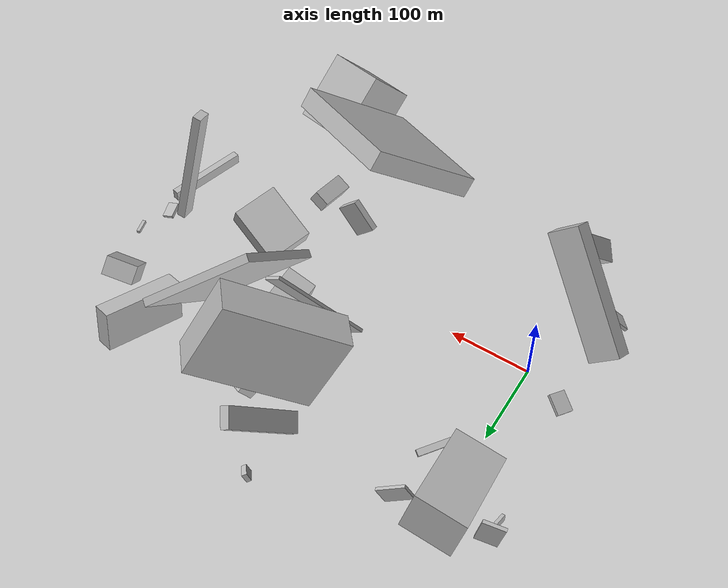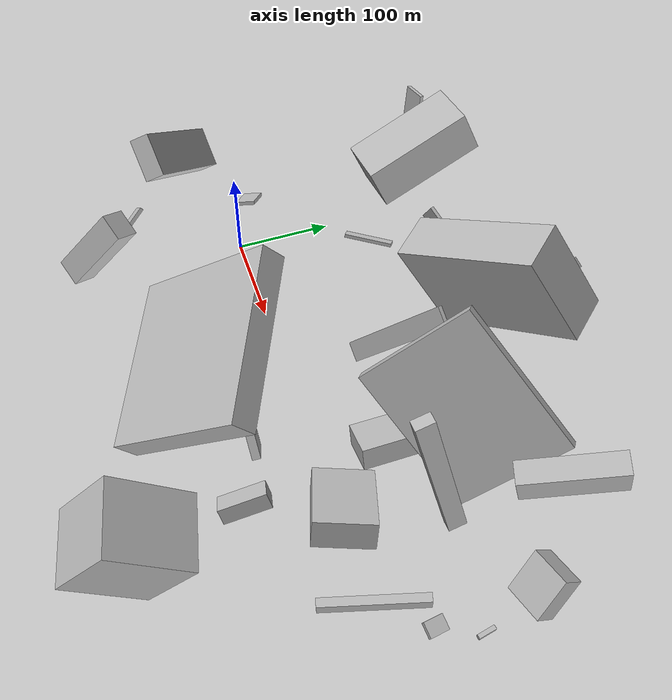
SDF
<sdf version="1.6">
 <world name="default">
  <scene>
   <sky><clouds><speed>12</speed></clouds></sky>
   <ambient>0.4 0.4 0.4 1</ambient>
   <background>0.7 0.7 0.7 1</background>
   <shadows>1</shadows>
  </scene>
  <gravity>0 0 -9.8066</gravity>
  <magnetic_field>6e-06 2.3e-05 -4.2e-05</magnetic_field>
  <physics default="0" name="default_physics" type="ode">
   <ode>
    <solver>
     <type>quick</type>
     <iters>10</iters>
     <sor>1.0</sor>
     <use_dynamic_moi_rescaling>0</use_dynamic_moi_rescaling>
    </solver>
    <constraints>
     <cfm>0</cfm>
     <erp>0.2</erp>
     <contact_max_correcting_vel>100</contact_max_correcting_vel>
     <contact_surface_layer>0.001</contact_surface_layer>
    </constraints>
   </ode>
   <max_step_size>0.004</max_step_size>
   <real_time_factor>1</real_time_factor>
   <real_time_update_rate>250</real_time_update_rate>
  </physics>
  <light name="sun" type="directional">
   <pose>0 0 10 0 0 0</pose>
   <diffuse>0.8 0.8 0.8 1</diffuse>
   <specular>0.2 0.2 0.2 1</specular>
   <attenuation>
    <range>1000</range>
    <constant>0.9</constant>
    <linear>0.01</linear>
    <quadratic>0.001</quadratic>
   </attenuation>
   <direction>-0.5 0.1 -0.9</direction>
  </light>
  <model name="building_1">
   <static>0</static>
   <pose>328.96740748485126 116.31050760424533 91.13583530954344 2.131819512630645 -0.6307419436587621 -2.5966485726200315</pose>
   <link name="link">
    <gravity>0</gravity>
    <pose>0 0 5.0 0 0 0</pose>
    <collision name="collision"><geometry><box><size>150 123 10</size></box></geometry></collision>
    <visual name="visual">
     <cast_shadows>0</cast_shadows>
     <geometry><box><size>150 123 10</size></box></geometry>
     <material>
      <script>
       <uri>model://HANNAS_wall/materials/scripts</uri>
       <uri>model://HANNAS_wall/materials/textures</uri>
       <name>vrc/HANNAS_wall</name>
      </script>
     </material>
    </visual>
   </link>
  </model>
  <model name="building_2">
   <static>0</static>
   <pose>414.7217196148463 236.42566977611784 67.48429855610225 1.810641158462051 0.2271885408326729 -0.2911369805196465</pose>
   <link name="link">
    <gravity>0</gravity>
    <pose>0 0 48.5 0 0 0</pose>
    <collision name="collision"><geometry><box><size>22 49 97</size></box></geometry></collision>
    <visual name="visual">
     <cast_shadows>0</cast_shadows>
     <geometry><box><size>22 49 97</size></box></geometry>
     <material>
      <script>
       <uri>model://HANNAS_wall/materials/scripts</uri>
       <uri>model://HANNAS_wall/materials/textures</uri>
       <name>vrc/HANNAS_wall</name>
      </script>
     </material>
    </visual>
   </link>
  </model>
  <model name="building_3">
   <static>0</static>
   <pose>249.72981160158554 -55.09458077681932 28.487642823340167 0.8596988517673394 -0.14031325863698793 1.4577036068987084</pose>
   <link name="link">
    <gravity>0</gravity>
    <pose>0 0 20.0 0 0 0</pose>
    <collision name="collision"><geometry><box><size>8 32 40</size></box></geometry></collision>
    <visual name="visual">
     <cast_shadows>0</cast_shadows>
     <geometry><box><size>8 32 40</size></box></geometry>
     <material>
      <script>
       <uri>model://HANNAS_wall/materials/scripts</uri>
       <uri>model://HANNAS_wall/materials/textures</uri>
       <name>vrc/HANNAS_wall</name>
      </script>
     </material>
    </visual>
   </link>
  </model>
  <model name="building_4">
   <static>0</static>
   <pose>437.06021363286754 -53.954474576174945 49.731262789690184 0.8514439373698645 1.5048558355335317 2.1369006358223297</pose>
   <link name="link">
    <gravity>0</gravity>
    <pose>0 0 46.5 0 0 0</pose>
    <collision name="collision"><geometry><box><size>13 8 93</size></box></geometry></collision>
    <visual name="visual">
     <cast_shadows>0</cast_shadows>
     <geometry><box><size>13 8 93</size></box></geometry>
     <material>
      <script>
       <uri>model://HANNAS_wall/materials/scripts</uri>
       <uri>model://HANNAS_wall/materials/textures</uri>
       <name>vrc/HANNAS_wall</name>
      </script>
     </material>
    </visual>
   </link>
  </model>
  <model name="building_5">
   <static>0</static>
   <pose>479.674969855449 38.46624604362538 16.98345192686502 0.43092332144804324 1.1898477941507972 -2.5435662185759016</pose>
   <link name="link">
    <gravity>0</gravity>
    <pose>0 0 7.0 0 0 0</pose>
    <collision name="collision"><geometry><box><size>4 19 14</size></box></geometry></collision>
    <visual name="visual">
     <cast_shadows>0</cast_shadows>
     <geometry><box><size>4 19 14</size></box></geometry>
     <material>
      <script>
       <uri>model://HANNAS_wall/materials/scripts</uri>
       <uri>model://HANNAS_wall/materials/textures</uri>
       <name>vrc/HANNAS_wall</name>
      </script>
     </material>
    </visual>
   </link>
  </model>
  <model name="building_6">
   <static>0</static>
   <pose>-18.52341600866193 -47.57646252071347 110.38511284031333 0.7384812825666298 0.4389787782875001 -1.8177262093464248</pose>
   <link name="link">
    <gravity>0</gravity>
    <pose>0 0 20.5 0 0 0</pose>
    <collision name="collision"><geometry><box><size>19 150 41</size></box></geometry></collision>
    <visual name="visual">
     <cast_shadows>0</cast_shadows>
     <geometry><box><size>19 150 41</size></box></geometry>
     <material>
      <script>
       <uri>model://HANNAS_wall/materials/scripts</uri>
       <uri>model://HANNAS_wall/materials/textures</uri>
       <name>vrc/HANNAS_wall</name>
      </script>
     </material>
    </visual>
   </link>
  </model>
  <model name="building_7">
   <static>0</static>
   <pose>-10.04856969905153 153.14148988292487 52.705754072064614 0.4317264732416803 -1.1380196569655439 -1.937526618358817</pose>
   <link name="link">
    <gravity>0</gravity>
    <pose>0 0 59.0 0 0 0</pose>
    <collision name="collision"><geometry><box><size>46 61 118</size></box></geometry></collision>
    <visual name="visual">
     <cast_shadows>0</cast_shadows>
     <geometry><box><size>46 61 118</size></box></geometry>
     <material>
      <script>
       <uri>model://HANNAS_wall/materials/scripts</uri>
       <uri>model://HANNAS_wall/materials/textures</uri>
       <name>vrc/HANNAS_wall</name>
      </script>
     </material>
    </visual>
   </link>
  </model>
  <model name="building_8">
   <static>0</static>
   <pose>33.44669521177803 209.43840323695176 22.177748763495945 2.0629140926607357 -0.0548974358084468 1.9354159170986485</pose>
   <link name="link">
    <gravity>0</gravity>
    <pose>0 0 18.0 0 0 0</pose>
    <collision name="collision"><geometry><box><size>4 24 36</size></box></geometry></collision>
    <visual name="visual">
     <cast_shadows>0</cast_shadows>
     <geometry><box><size>4 24 36</size></box></geometry>
     <material>
      <script>
       <uri>model://HANNAS_wall/materials/scripts</uri>
       <uri>model://HANNAS_wall/materials/textures</uri>
       <name>vrc/HANNAS_wall</name>
      </script>
     </material>
    </visual>
   </link>
  </model>
  <model name="building_9">
   <static>0</static>
   <pose>342.5326098073532 -27.824830818172874 29.79456466321639 1.7465963337909043 -1.204940740306773 2.644774289431182</pose>
   <link name="link">
    <gravity>0</gravity>
    <pose>0 0 28.5 0 0 0</pose>
    <collision name="collision"><geometry><box><size>28 71 57</size></box></geometry></collision>
    <visual name="visual">
     <cast_shadows>0</cast_shadows>
     <geometry><box><size>28 71 57</size></box></geometry>
     <material>
      <script>
       <uri>model://HANNAS_wall/materials/scripts</uri>
       <uri>model://HANNAS_wall/materials/textures</uri>
       <name>vrc/HANNAS_wall</name>
      </script>
     </material>
    </visual>
   </link>
  </model>
  <model name="building_10">
   <static>0</static>
   <pose>-0.6358123337396187 -140.64445620885903 50.89687112398163 0.7924096843848999 -0.8783371300952834 1.2879963569579658</pose>
   <link name="link">
    <gravity>0</gravity>
    <pose>0 0 13.5 0 0 0</pose>
    <collision name="collision"><geometry><box><size>87 28 27</size></box></geometry></collision>
    <visual name="visual">
     <cast_shadows>0</cast_shadows>
     <geometry><box><size>87 28 27</size></box></geometry>
     <material>
      <script>
       <uri>model://HANNAS_wall/materials/scripts</uri>
       <uri>model://HANNAS_wall/materials/textures</uri>
       <name>vrc/HANNAS_wall</name>
      </script>
     </material>
    </visual>
   </link>
  </model>
  <model name="building_11">
   <static>0</static>
   <pose>208.29557280606073 238.95431111225338 57.89735091569493 -0.7135387307613854 -0.8777859549005591 1.1610748959325894</pose>
   <link name="link">
    <gravity>0</gravity>
    <pose>0 0 5.5 0 0 0</pose>
    <collision name="collision"><geometry><box><size>126 25 11</size></box></geometry></collision>
    <visual name="visual">
     <cast_shadows>0</cast_shadows>
     <geometry><box><size>126 25 11</size></box></geometry>
     <material>
      <script>
       <uri>model://HANNAS_wall/materials/scripts</uri>
       <uri>model://HANNAS_wall/materials/textures</uri>
       <name>vrc/HANNAS_wall</name>
      </script>
     </material>
    </visual>
   </link>
  </model>
  <model name="building_12">
   <static>0</static>
   <pose>-65.39786455309431 190.0686153612701 20.6720425222332 1.7537138904504341 -0.23365342418821727 1.4607518460749989</pose>
   <link name="link">
    <gravity>0</gravity>
    <pose>0 0 2.0 0 0 0</pose>
    <collision name="collision"><geometry><box><size>19 8 4</size></box></geometry></collision>
    <visual name="visual">
     <cast_shadows>0</cast_shadows>
     <geometry><box><size>19 8 4</size></box></geometry>
     <material>
      <script>
       <uri>model://HANNAS_wall/materials/scripts</uri>
       <uri>model://HANNAS_wall/materials/textures</uri>
       <name>vrc/HANNAS_wall</name>
      </script>
     </material>
    </visual>
   </link>
  </model>
  <model name="building_13">
   <static>0</static>
   <pose>196.18361442097844 279.29096474863167 25.667427097541243 0.9693576865565552 1.088657569224791 -3.0511070204643596</pose>
   <link name="link">
    <gravity>0</gravity>
    <pose>0 0 7.0 0 0 0</pose>
    <collision name="collision"><geometry><box><size>12 6 14</size></box></geometry></collision>
    <visual name="visual">
     <cast_shadows>0</cast_shadows>
     <geometry><box><size>12 6 14</size></box></geometry>
     <material>
      <script>
       <uri>model://HANNAS_wall/materials/scripts</uri>
       <uri>model://HANNAS_wall/materials/textures</uri>
       <name>vrc/HANNAS_wall</name>
      </script>
     </material>
    </visual>
   </link>
  </model>
  <model name="building_14">
   <static>0</static>
   <pose>53.894783131711634 159.10041754671383 6.215572510090148 -1.6376663688393986 -1.2720475471002393 2.5795838149652086</pose>
   <link name="link">
    <gravity>0</gravity>
    <pose>0 0 26.5 0 0 0</pose>
    <collision name="collision"><geometry><box><size>4 8 53</size></box></geometry></collision>
    <visual name="visual">
     <cast_shadows>0</cast_shadows>
     <geometry><box><size>4 8 53</size></box></geometry>
     <material>
      <script>
       <uri>model://HANNAS_wall/materials/scripts</uri>
       <uri>model://HANNAS_wall/materials/textures</uri>
       <name>vrc/HANNAS_wall</name>
      </script>
     </material>
    </visual>
   </link>
  </model>
  <model name="building_15">
   <static>0</static>
   <pose>170.34518902772774 153.05476731601627 92.21995910296707 1.0331350386107383 -0.202860084565836 2.260559198994174</pose>
   <link name="link">
    <gravity>0</gravity>
    <pose>0 0 75.0 0 0 0</pose>
    <collision name="collision"><geometry><box><size>45 100 150</size></box></geometry></collision>
    <visual name="visual">
     <cast_shadows>0</cast_shadows>
     <geometry><box><size>45 100 150</size></box></geometry>
     <material>
      <script>
       <uri>model://HANNAS_wall/materials/scripts</uri>
       <uri>model://HANNAS_wall/materials/textures</uri>
       <name>vrc/HANNAS_wall</name>
      </script>
     </material>
    </visual>
   </link>
  </model>
  <model name="building_16">
   <static>0</static>
   <pose>233.80795515369206 94.6718631966741 75.15060650294966 -0.43855254945772215 -0.9332560446167864 0.6433877979936673</pose>
   <link name="link">
    <gravity>0</gravity>
    <pose>0 0 10.0 0 0 0</pose>
    <collision name="collision"><geometry><box><size>150 4 20</size></box></geometry></collision>
    <visual name="visual">
     <cast_shadows>0</cast_shadows>
     <geometry><box><size>150 4 20</size></box></geometry>
     <material>
      <script>
       <uri>model://HANNAS_wall/materials/scripts</uri>
       <uri>model://HANNAS_wall/materials/textures</uri>
       <name>vrc/HANNAS_wall</name>
      </script>
     </material>
    </visual>
   </link>
  </model>
  <model name="building_17">
   <static>0</static>
   <pose>283.5733743963028 89.58345175364589 19.478558900580637 2.8604282062994897 -0.013482416523506345 1.5709840652987723</pose>
   <link name="link">
    <gravity>0</gravity>
    <pose>0 0 12.0 0 0 0</pose>
    <collision name="collision"><geometry><box><size>109 38 24</size></box></geometry></collision>
    <visual name="visual">
     <cast_shadows>0</cast_shadows>
     <geometry><box><size>109 38 24</size></box></geometry>
     <material>
      <script>
       <uri>model://HANNAS_wall/materials/scripts</uri>
       <uri>model://HANNAS_wall/materials/textures</uri>
       <name>vrc/HANNAS_wall</name>
      </script>
     </material>
    </visual>
   </link>
  </model>
  <model name="building_18">
   <static>0</static>
   <pose>210.2447671967885 -137.57708410654672 109.5242330000859 0.8379039229540826 -0.245028879259812 2.6901563000697224</pose>
   <link name="link">
    <gravity>0</gravity>
    <pose>0 0 75.0 0 0 0</pose>
    <collision name="collision"><geometry><box><size>150 24 150</size></box></geometry></collision>
    <visual name="visual">
     <cast_shadows>0</cast_shadows>
     <geometry><box><size>150 24 150</size></box></geometry>
     <material>
      <script>
       <uri>model://HANNAS_wall/materials/scripts</uri>
       <uri>model://HANNAS_wall/materials/textures</uri>
       <name>vrc/HANNAS_wall</name>
      </script>
     </material>
    </visual>
   </link>
  </model>
  <model name="building_19">
   <static>0</static>
   <pose>378.9566890382277 -192.24186597522436 69.41161324861326 1.422769345025044 -0.6441337932383645 -1.7120073744636572</pose>
   <link name="link">
    <gravity>0</gravity>
    <pose>0 0 33.5 0 0 0</pose>
    <collision name="collision"><geometry><box><size>84 79 67</size></box></geometry></collision>
    <visual name="visual">
     <cast_shadows>0</cast_shadows>
     <geometry><box><size>84 79 67</size></box></geometry>
     <material>
      <script>
       <uri>model://HANNAS_wall/materials/scripts</uri>
       <uri>model://HANNAS_wall/materials/textures</uri>
       <name>vrc/HANNAS_wall</name>
      </script>
     </material>
    </visual>
   </link>
  </model>
  <model name="building_20">
   <static>0</static>
   <pose>492.2193124407505 75.9262982565395 17.23076357495245 -1.4866928630073042 -0.006546699085108513 1.7672350574527889</pose>
   <link name="link">
    <gravity>0</gravity>
    <pose>0 0 2.0 0 0 0</pose>
    <collision name="collision"><geometry><box><size>17 4 4</size></box></geometry></collision>
    <visual name="visual">
     <cast_shadows>0</cast_shadows>
     <geometry><box><size>17 4 4</size></box></geometry>
     <material>
      <script>
       <uri>model://HANNAS_wall/materials/scripts</uri>
       <uri>model://HANNAS_wall/materials/textures</uri>
       <name>vrc/HANNAS_wall</name>
      </script>
     </material>
    </visual>
   </link>
  </model>
  <model name="building_21">
   <static>0</static>
   <pose>-64.93582651239939 223.09587262227393 39.15560203389671 0.1446571904266778 0.12074206964177818 -2.932331869560922</pose>
   <link name="link">
    <gravity>0</gravity>
    <pose>0 0 32.0 0 0 0</pose>
    <collision name="collision"><geometry><box><size>26 4 64</size></box></geometry></collision>
    <visual name="visual">
     <cast_shadows>0</cast_shadows>
     <geometry><box><size>26 4 64</size></box></geometry>
     <material>
      <script>
       <uri>model://HANNAS_wall/materials/scripts</uri>
       <uri>model://HANNAS_wall/materials/textures</uri>
       <name>vrc/HANNAS_wall</name>
      </script>
     </material>
    </visual>
   </link>
  </model>
  <model name="building_22">
   <static>0</static>
   <pose>264.5260026914511 185.72649306461656 35.350122206403995 2.669298460092965 0.09343852159557109 -0.3891939600495438</pose>
   <link name="link">
    <gravity>0</gravity>
    <pose>0 0 14.5 0 0 0</pose>
    <collision name="collision"><geometry><box><size>30 38 29</size></box></geometry></collision>
    <visual name="visual">
     <cast_shadows>0</cast_shadows>
     <geometry><box><size>30 38 29</size></box></geometry>
     <material>
      <script>
       <uri>model://HANNAS_wall/materials/scripts</uri>
       <uri>model://HANNAS_wall/materials/textures</uri>
       <name>vrc/HANNAS_wall</name>
      </script>
     </material>
    </visual>
   </link>
  </model>
  <model name="building_23">
   <static>0</static>
   <pose>469.99954357922655 128.3285648232312 28.495272506444092 2.2765906453044895 0.17326746402969762 -2.9053648233161247</pose>
   <link name="link">
    <gravity>0</gravity>
    <pose>0 0 11.5 0 0 0</pose>
    <collision name="collision"><geometry><box><size>38 43 23</size></box></geometry></collision>
    <visual name="visual">
     <cast_shadows>0</cast_shadows>
     <geometry><box><size>38 43 23</size></box></geometry>
     <material>
      <script>
       <uri>model://HANNAS_wall/materials/scripts</uri>
       <uri>model://HANNAS_wall/materials/textures</uri>
       <name>vrc/HANNAS_wall</name>
      </script>
     </material>
    </visual>
   </link>
  </model>
  <model name="building_24">
   <static>0</static>
   <pose>328.3284825281662 -83.63365950706385 30.88062654334656 2.5762155469165484 -1.0725477987037952 -2.713222960654322</pose>
   <link name="link">
    <gravity>0</gravity>
    <pose>0 0 10.0 0 0 0</pose>
    <collision name="collision"><geometry><box><size>16 46 20</size></box></geometry></collision>
    <visual name="visual">
     <cast_shadows>0</cast_shadows>
     <geometry><box><size>16 46 20</size></box></geometry>
     <material>
      <script>
       <uri>model://HANNAS_wall/materials/scripts</uri>
       <uri>model://HANNAS_wall/materials/textures</uri>
       <name>vrc/HANNAS_wall</name>
      </script>
     </material>
    </visual>
   </link>
  </model>
  <model name="building_25">
   <static>0</static>
   <pose>421.0771376886775 69.23663412324834 87.83546787580671 -0.11183330856976795 -0.23151679475212072 1.6146860662778701</pose>
   <link name="link">
    <gravity>0</gravity>
    <pose>0 0 75.0 0 0 0</pose>
    <collision name="collision"><geometry><box><size>16 10 150</size></box></geometry></collision>
    <visual name="visual">
     <cast_shadows>0</cast_shadows>
     <geometry><box><size>16 10 150</size></box></geometry>
     <material>
      <script>
       <uri>model://HANNAS_wall/materials/scripts</uri>
       <uri>model://HANNAS_wall/materials/textures</uri>
       <name>vrc/HANNAS_wall</name>
      </script>
     </material>
    </visual>
   </link>
  </model>
  <model name="building_26">
   <static>0</static>
   <pose>-61.024611408881846 -104.09186650676503 17.782703428751237 0.7611323001895632 0.34857573324345936 -0.9221630691525943</pose>
   <link name="link">
    <gravity>0</gravity>
    <pose>0 0 2.0 0 0 0</pose>
    <collision name="collision"><geometry><box><size>26 15 4</size></box></geometry></collision>
    <visual name="visual">
     <cast_shadows>0</cast_shadows>
     <geometry><box><size>26 15 4</size></box></geometry>
     <material>
      <script>
       <uri>model://HANNAS_wall/materials/scripts</uri>
       <uri>model://HANNAS_wall/materials/textures</uri>
       <name>vrc/HANNAS_wall</name>
      </script>
     </material>
    </visual>
   </link>
  </model>
  <model name="building_27">
   <static>0</static>
   <pose>-62.53856090648802 33.01568610491768 12.232677200445446 0.6651691313700019 1.1248538692812504 0.09457268448600778</pose>
   <link name="link">
    <gravity>0</gravity>
    <pose>0 0 12.5 0 0 0</pose>
    <collision name="collision"><geometry><box><size>4 21 25</size></box></geometry></collision>
    <visual name="visual">
     <cast_shadows>0</cast_shadows>
     <geometry><box><size>4 21 25</size></box></geometry>
     <material>
      <script>
       <uri>model://HANNAS_wall/materials/scripts</uri>
       <uri>model://HANNAS_wall/materials/textures</uri>
       <name>vrc/HANNAS_wall</name>
      </script>
     </material>
    </visual>
   </link>
  </model>
 </world>
</sdf>
